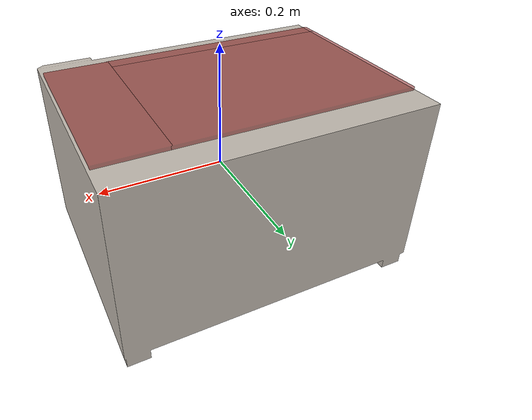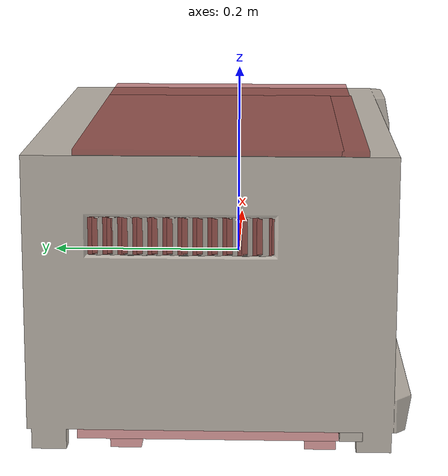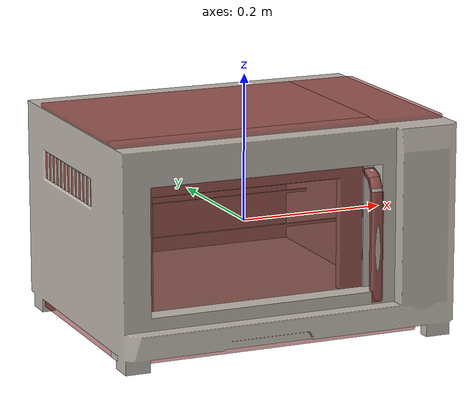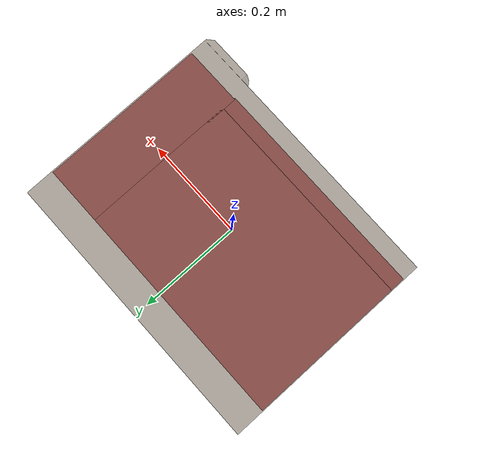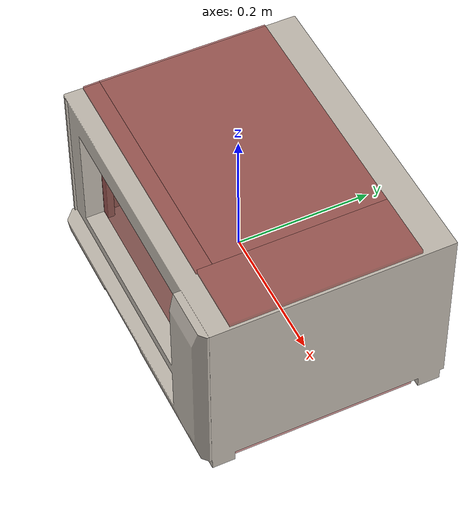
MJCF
<mujoco model="model">
  <option timestep="0.002" gravity="0.0 0.0 -9.81" />
  <compiler angle="radian" />
  <asset>
    <mesh file="visuals/door.obj" name="door_vis" scale="0.850000 0.850000 0.850000" />
    <mesh file="visuals/door_Clear.obj" name="door_Clear_vis" scale="0.850000 0.850000 0.850000" />
    <mesh file="visuals/Body001.obj" name="Body001_vis" scale="0.850000 0.850000 0.850000" />
    <mesh file="visuals/Disc001.obj" name="Disc001_vis" scale="0.850000 0.850000 0.850000" />
    <texture file="visuals/T_BC001.png" name="Body001_material" type="2d" />
    <material name="Body001_material" rgba="1 1 1 1.0" texture="Body001_material" shininess="0.1" specular="4" />
    <texture file="visuals/T_BC001.png" name="door_material" type="2d" />
    <material name="door_material" rgba="1 1 1 1.0" texture="door_material" shininess="0.4472135901451111" specular="0.3103448502657381" />
    <material name="door_Clear_material" rgba="0.03637973591685295 0.03637973591685295 0.03637973591685295 0.800000011920929" shininess="0.4472135901451111" specular="0.3103448502657381" />
    <texture file="visuals/T_BC001.png" name="Disc001_material" type="2d" />
    <material name="Disc001_material" rgba="1 1 1 1.0" texture="Disc001_material" shininess="0.1" specular="4" />
  </asset>
  <default>
    <default class="visual">
      <geom conaffinity="0" contype="0" group="1" type="mesh" />
    </default>
    <default class="collision">
      <geom group="0" rgba="0.5 0 0 0.5" />
    </default>
    <default class="spawn">
      <geom group="0" rgba="1 1 1 0.5" contype="0" conaffinity="0" />
      <site group="0" rgba="1 1 1 0.5" />
    </default>
    <default class="region">
      <geom group="1" conaffinity="0" contype="0" rgba="0 1 0 0" />
    </default>
  </default>
  <worldbody>
    <body>
      <body name="object">
        <geom class="collision" type="cylinder" pos="-0.048990 0.009420 -0.118385" size="0.095869 0.000740" quat="1.0 0.0 0.0 0.0" name="tray" rgba="0 1 0 0.5" />
        <geom class="collision" type="box" pos="0.161216 -0.125971 -0.066116" size="0.009264 0.000926 0.006103" quat="1.0 0.0 0.0 0.0" name="stop_button" rgba="0.0 0.5 0 0.5" />
        <geom class="collision" type="box" pos="0.205774 -0.125971 -0.066116" size="0.009280 0.000926 0.006103" quat="1.0 0.0 0.0 0.0" name="start_button" rgba="0.0 0.5 0 0.5" />
        <geom mesh="Body001_vis" type="mesh" solimp="0.998 0.998 0.001" solref="0.001 1" friction="0.95 0.3 0.1" class="visual" material="Body001_material" />
        <geom class="collision" type="box" pos="-0.048025 0.025472 -0.128900" size="0.183429 0.127087 0.005238" quat="1.0 0.0 0.0 0.0" />
        <geom class="collision" type="box" pos="-0.224811 0.025472 -0.006913" size="0.006642 0.127087 0.117354" quat="1.0 0.0 0.0 0.0" />
        <geom class="collision" type="box" pos="-0.048025 0.134621 -0.004032" size="0.183429 0.017937 0.119026" quat="1.0 0.0 0.0 0.0" />
        <geom class="collision" type="box" pos="-0.048027 -0.112617 0.142768" size="0.183430 0.013053 0.007725" quat="1.0 0.0 0.0 0.0" />
        <geom class="collision" type="box" pos="0.182365 0.014339 0.007734" size="0.049089 0.138219 0.143054" quat="1.0 0.0 0.0 0.0" />
        <geom class="collision" type="box" pos="-0.048026 0.025473 0.129860" size="0.183428 0.127086 0.020928" quat="1.0 0.0 0.0 0.0" />
        <geom class="collision" type="box" pos="0.125222 0.025473 -0.006913" size="0.009881 0.127087 0.117352" quat="1.0 0.0 0.0 0.0" />
        <geom class="collision" type="box" pos="-0.000591 -0.084347 -0.142668" size="0.209426 0.015361 0.008119" quat="1.0 0.0 0.0 0.0" />
        <geom class="collision" type="box" pos="-0.000591 0.107006 -0.142668" size="0.209426 0.015361 0.008119" quat="1.0 0.0 0.0 0.0" />
        <body name="door">
          <joint axis="0.0 0.0 1.0" pos="-0.219953 -0.113550 -0.000348" limited="true" name="microjoint" range="-1.5707963267948966 0.0" type="hinge" damping="1" frictionloss="1" armature=".01" stiffness="0.05" />
          <geom mesh="door_vis" type="mesh" solimp="0.998 0.998 0.001" solref="0.001 1" friction="0.95 0.3 0.1" class="visual" material="door_material" />
          <geom class="collision" type="box" pos="-0.048856 -0.113572 0.000062" size="0.178675 0.008741 0.130632" quat="1.0 0.0 0.0 0.0" name="door_main" />
          <geom class="collision" type="box" pos="-0.048439 -0.116552 -0.000285" size="0.132752 0.005433 0.077227" quat="1.0 0.0 0.0 0.0" />
          <geom class="collision" type="box" pos="0.125010 -0.147421 -0.013799" size="0.007565 0.004894 0.074520" quat="1.0 0.0 0.0 0.0" name="door_handle_main" />
          <geom class="collision" type="box" pos="0.125010 -0.132853 0.079857" size="0.007565 0.004894 0.009647" quat="0.823179304599762 -0.5677815079689026 -0.0 0.0" />
          <geom class="collision" type="box" pos="0.125010 -0.142782 0.070120" size="0.007565 0.004894 0.007755" quat="0.969722330570221 -0.24421025812625885 -0.0 0.0" />
          <geom class="collision" type="box" pos="0.125010 -0.142773 -0.097737" size="0.007565 0.004894 0.007734" quat="0.969722330570221 0.24421025812625885 0.0 0.0" />
          <geom class="collision" type="box" pos="0.125010 -0.132853 -0.107456" size="0.007565 0.004894 0.009647" quat="0.823179304599762 0.5677815079689026 0.0 0.0" />
          <body name="door_Clear">
            <geom mesh="door_Clear_vis" type="mesh" solimp="0.998 0.998 0.001" solref="0.001 1" friction="0.95 0.3 0.1" class="visual" material="door_Clear_material" />
            <geom class="collision" type="box" pos="-0.048439 -0.116552 -0.000285" size="0.132752 0.005433 0.077227" quat="1.0 0.0 0.0 0.0" />
          </body>
        </body>
        <body name="Disc001">
          <joint axis="0.0 0.0 1.0" pos="-0.048990 0.009420 -0.092005" limited="false" name="Disc001_joint" range="0 360" type="hinge" damping="1" frictionloss="1" armature=".01" stiffness="0.05" />
          <geom mesh="Disc001_vis" type="mesh" solimp="0.998 0.998 0.001" solref="0.001 1" friction="0.95 0.3 0.1" class="visual" material="Disc001_material" />
          <geom class="collision" type="cylinder" pos="-0.048990 0.009420 -0.121104" size="0.095869 0.001436" quat="1.0 0.0 0.0 0.0" />
        </body>
        <geom class="region" name="reg_int" type="box" pos="-0.051196 0.007881 -0.006638" size="0.163018 0.105172 0.111857" />
        <geom class="region" name="reg_main" type="box" pos="0.000000 0.013387 0.000000" size="0.232304 0.140021 0.151637" />
      <geom class="region" name="reg_tray" type="cylinder" pos="-0.048990 0.009420 -0.006213" size="0.095869 0.110582" /></body>
    </body>
  </worldbody>
  <actuator>
    <motor name="microjoint_actuator" joint="microjoint" gear="10" />
    <motor name="Disc001_joint_actuator" joint="Disc001_joint" gear="10" />
  </actuator>
</mujoco>
